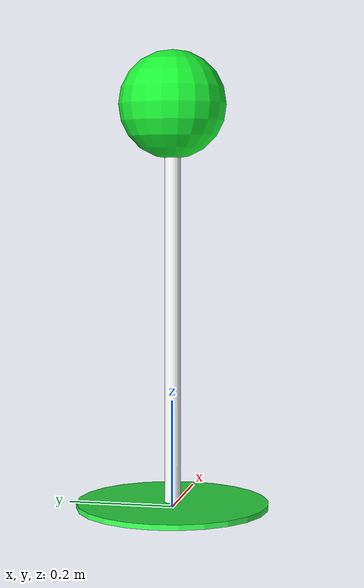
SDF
<?xml version="1.0" ?>
<sdf version="1.9">
  <model name="goal_flag">
    <static>true</static>
    <self_collide>false</self_collide>

    <link name="link">
      <laser_retro>0.0</laser_retro>

      <!-- Disco de base en el piso para ver el "punto exacto" del goal -->
      <visual name="base_disc">
        <pose>0 0 0.005 0 0 0</pose>
        <cast_shadows>false</cast_shadows>
        <geometry>
          <cylinder>
            <radius>0.18</radius>
            <length>0.01</length>
          </cylinder>
        </geometry>
        <material>
          <ambient>0.10 0.80 0.20 1</ambient>
          <diffuse>0.20 0.95 0.30 1</diffuse>
          <specular>0.30 1.00 0.40 1</specular>
          <emissive>0.05 0.50 0.10 1</emissive>
        </material>
      </visual>

      <!-- Poste blanco delgado -->
      <visual name="pole">
        <pose>0 0 0.35 0 0 0</pose>
        <cast_shadows>false</cast_shadows>
        <geometry>
          <cylinder>
            <radius>0.015</radius>
            <length>0.70</length>
          </cylinder>
        </geometry>
        <material>
          <ambient>0.85 0.85 0.85 1</ambient>
          <diffuse>0.95 0.95 0.95 1</diffuse>
          <specular>1.00 1.00 1.00 1</specular>
        </material>
      </visual>

      <!-- Esfera verde brillante arriba del poste -->
      <visual name="sphere">
        <pose>0 0 0.75 0 0 0</pose>
        <cast_shadows>false</cast_shadows>
        <geometry>
          <sphere>
            <radius>0.10</radius>
          </sphere>
        </geometry>
        <material>
          <ambient>0.05 0.70 0.10 1</ambient>
          <diffuse>0.10 0.95 0.20 1</diffuse>
          <specular>0.30 1.00 0.40 1</specular>
          <emissive>0.10 0.60 0.15 1</emissive>
        </material>
      </visual>

    </link>
  </model>
</sdf>
